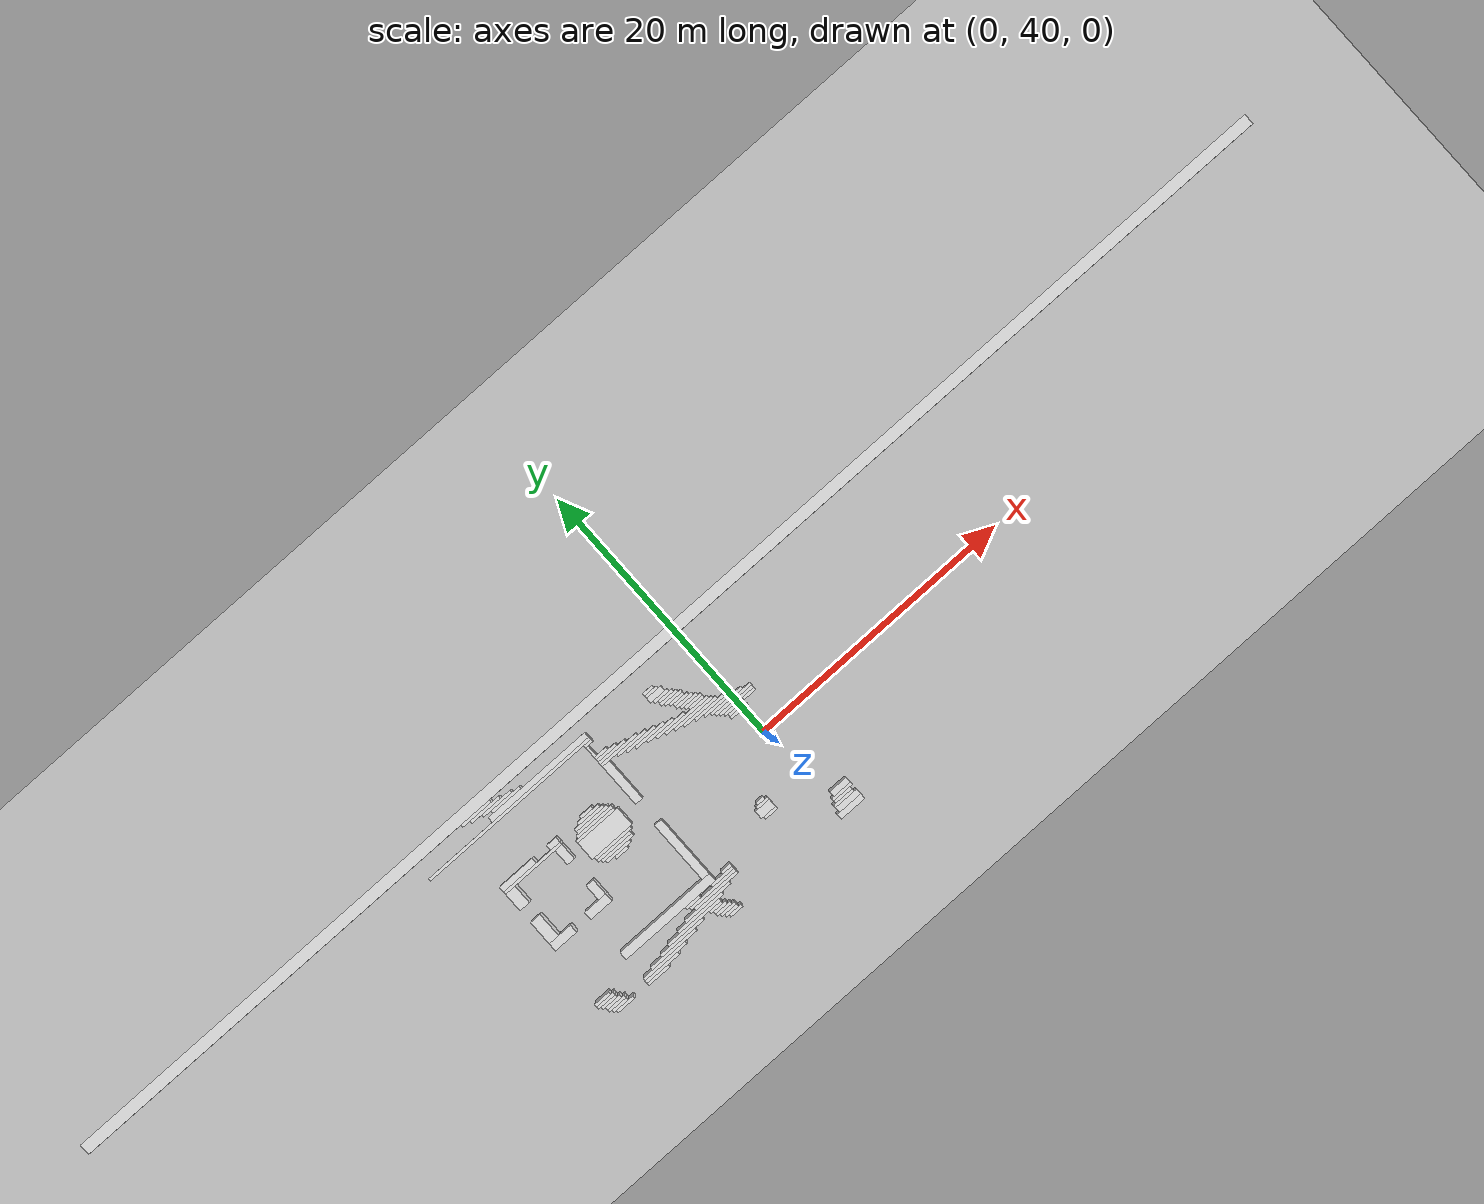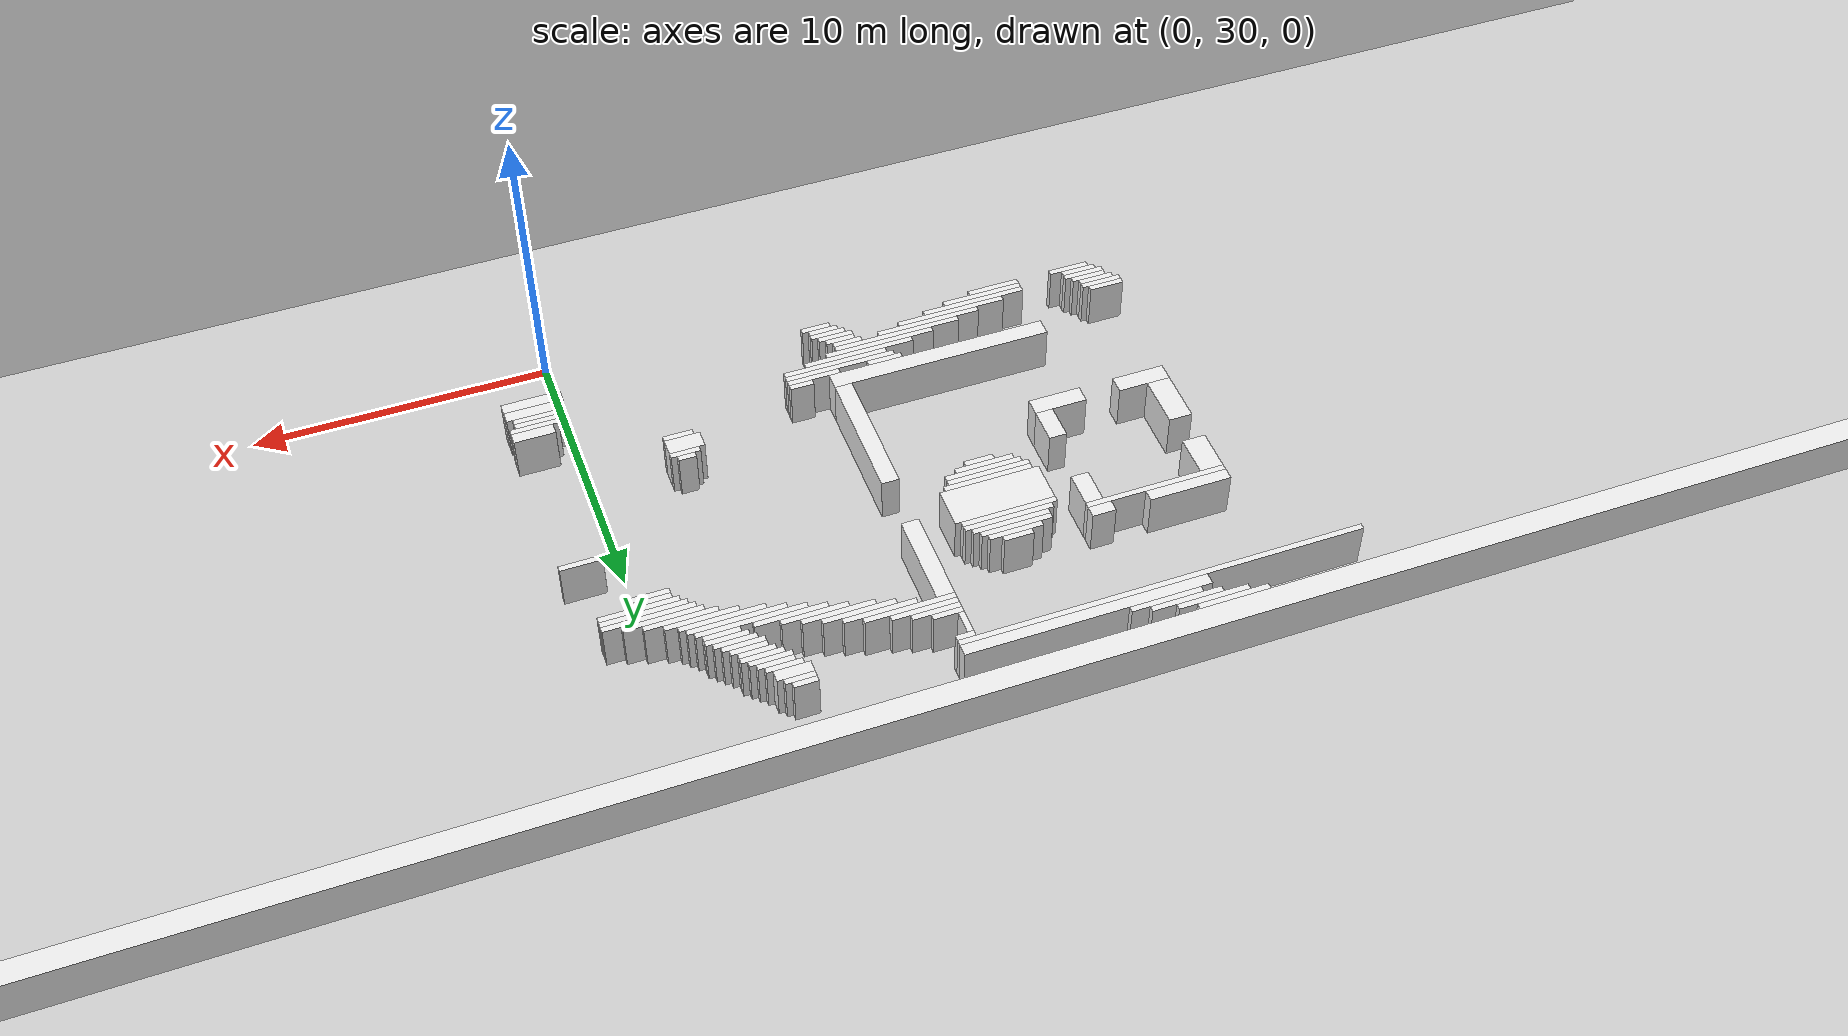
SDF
<sdf version="1.7">
 <world name="default">
  <model name="ground_plane">
   <static>1</static>
   <link name="link">
    <collision name="collision">
     <geometry><plane><normal>0 0 1</normal><size>120 120</size></plane></geometry>
    </collision>
    <visual name="visual">
     <geometry><plane><normal>0 0 1</normal><size>120 120</size></plane></geometry>
     <material>
      <script><uri>file://media/materials/scripts/gazebo.material</uri><name>Gazebo/Grey</name></script>
     </material>
    </visual>
   </link>
  </model>
  <model name="random_complex_03_model">
   <static>1</static>
   <link name="obs_1">
    <pose>-0.4000 48.8000 0.8000 0 0 0</pose>
    <collision name="obs_1_col"><geometry><box><size>99.2000 0.8000 1.6000</size></box></geometry></collision>
    <visual name="obs_1_vis">
     <geometry><box><size>99.2000 0.8000 1.6000</size></box></geometry>
     <material>
      <script><uri>file://media/materials/scripts/gazebo.material</uri><name>Gazebo/White</name></script>
     </material>
    </visual>
   </link>
   <link name="obs_3">
    <pose>-17.2000 48.3000 0.8000 0 0 0</pose>
    <collision name="obs_3_col"><geometry><box><size>2.4000 0.2000 1.6000</size></box></geometry></collision>
    <visual name="obs_3_vis">
     <geometry><box><size>2.4000 0.2000 1.6000</size></box></geometry>
     <material>
      <script><uri>file://media/materials/scripts/gazebo.material</uri><name>Gazebo/White</name></script>
     </material>
    </visual>
   </link>
   <link name="obs_6">
    <pose>-16.6000 48.1000 0.8000 0 0 0</pose>
    <collision name="obs_6_col"><geometry><box><size>2.4000 0.2000 1.6000</size></box></geometry></collision>
    <visual name="obs_6_vis">
     <geometry><box><size>2.4000 0.2000 1.6000</size></box></geometry>
     <material>
      <script><uri>file://media/materials/scripts/gazebo.material</uri><name>Gazebo/White</name></script>
     </material>
    </visual>
   </link>
   <link name="obs_10">
    <pose>-15.8000 47.9000 0.8000 0 0 0</pose>
    <collision name="obs_10_col"><geometry><box><size>2.4000 0.2000 1.6000</size></box></geometry></collision>
    <visual name="obs_10_vis">
     <geometry><box><size>2.4000 0.2000 1.6000</size></box></geometry>
     <material>
      <script><uri>file://media/materials/scripts/gazebo.material</uri><name>Gazebo/White</name></script>
     </material>
    </visual>
   </link>
   <link name="obs_15">
    <pose>-15.2000 47.7000 0.8000 0 0 0</pose>
    <collision name="obs_15_col"><geometry><box><size>2.4000 0.2000 1.6000</size></box></geometry></collision>
    <visual name="obs_15_vis">
     <geometry><box><size>2.4000 0.2000 1.6000</size></box></geometry>
     <material>
      <script><uri>file://media/materials/scripts/gazebo.material</uri><name>Gazebo/White</name></script>
     </material>
    </visual>
   </link>
   <link name="obs_22">
    <pose>-12.7000 47.4000 0.8000 0 0 0</pose>
    <collision name="obs_22_col"><geometry><box><size>8.2000 0.4000 1.6000</size></box></geometry></collision>
    <visual name="obs_22_vis">
     <geometry><box><size>8.2000 0.4000 1.6000</size></box></geometry>
     <material>
      <script><uri>file://media/materials/scripts/gazebo.material</uri><name>Gazebo/White</name></script>
     </material>
    </visual>
   </link>
   <link name="obs_26">
    <pose>-15.4000 47.1000 0.8000 0 0 0</pose>
    <collision name="obs_26_col"><geometry><box><size>13.6000 0.2000 1.6000</size></box></geometry></collision>
    <visual name="obs_26_vis">
     <geometry><box><size>13.6000 0.2000 1.6000</size></box></geometry>
     <material>
      <script><uri>file://media/materials/scripts/gazebo.material</uri><name>Gazebo/White</name></script>
     </material>
    </visual>
   </link>
   <link name="obs_30">
    <pose>-8.9000 46.9000 0.8000 0 0 0</pose>
    <collision name="obs_30_col"><geometry><box><size>0.6000 0.2000 1.6000</size></box></geometry></collision>
    <visual name="obs_30_vis">
     <geometry><box><size>0.6000 0.2000 1.6000</size></box></geometry>
     <material>
      <script><uri>file://media/materials/scripts/gazebo.material</uri><name>Gazebo/White</name></script>
     </material>
    </visual>
   </link>
   <link name="obs_31">
    <pose>-3.8000 46.9000 0.8000 0 0 0</pose>
    <collision name="obs_31_col"><geometry><box><size>0.8000 0.2000 1.6000</size></box></geometry></collision>
    <visual name="obs_31_vis">
     <geometry><box><size>0.8000 0.2000 1.6000</size></box></geometry>
     <material>
      <script><uri>file://media/materials/scripts/gazebo.material</uri><name>Gazebo/White</name></script>
     </material>
    </visual>
   </link>
   <link name="obs_34">
    <pose>-3.7000 46.7000 0.8000 0 0 0</pose>
    <collision name="obs_34_col"><geometry><box><size>1.0000 0.2000 1.6000</size></box></geometry></collision>
    <visual name="obs_34_vis">
     <geometry><box><size>1.0000 0.2000 1.6000</size></box></geometry>
     <material>
      <script><uri>file://media/materials/scripts/gazebo.material</uri><name>Gazebo/White</name></script>
     </material>
    </visual>
   </link>
   <link name="obs_38">
    <pose>-3.6000 46.4000 0.8000 0 0 0</pose>
    <collision name="obs_38_col"><geometry><box><size>1.2000 0.4000 1.6000</size></box></geometry></collision>
    <visual name="obs_38_vis">
     <geometry><box><size>1.2000 0.4000 1.6000</size></box></geometry>
     <material>
      <script><uri>file://media/materials/scripts/gazebo.material</uri><name>Gazebo/White</name></script>
     </material>
    </visual>
   </link>
   <link name="obs_42">
    <pose>-9.1000 46.4000 0.8000 0 0 0</pose>
    <collision name="obs_42_col"><geometry><box><size>0.2000 0.8000 1.6000</size></box></geometry></collision>
    <visual name="obs_42_vis">
     <geometry><box><size>0.2000 0.8000 1.6000</size></box></geometry>
     <material>
      <script><uri>file://media/materials/scripts/gazebo.material</uri><name>Gazebo/White</name></script>
     </material>
    </visual>
   </link>
   <link name="obs_45">
    <pose>-3.4000 46.1000 0.8000 0 0 0</pose>
    <collision name="obs_45_col"><geometry><box><size>1.2000 0.2000 1.6000</size></box></geometry></collision>
    <visual name="obs_45_vis">
     <geometry><box><size>1.2000 0.2000 1.6000</size></box></geometry>
     <material>
      <script><uri>file://media/materials/scripts/gazebo.material</uri><name>Gazebo/White</name></script>
     </material>
    </visual>
   </link>
   <link name="obs_50">
    <pose>-8.7000 45.9000 0.8000 0 0 0</pose>
    <collision name="obs_50_col"><geometry><box><size>1.0000 0.2000 1.6000</size></box></geometry></collision>
    <visual name="obs_50_vis">
     <geometry><box><size>1.0000 0.2000 1.6000</size></box></geometry>
     <material>
      <script><uri>file://media/materials/scripts/gazebo.material</uri><name>Gazebo/White</name></script>
     </material>
    </visual>
   </link>
   <link name="obs_51">
    <pose>-3.2000 45.9000 0.8000 0 0 0</pose>
    <collision name="obs_51_col"><geometry><box><size>1.2000 0.2000 1.6000</size></box></geometry></collision>
    <visual name="obs_51_vis">
     <geometry><box><size>1.2000 0.2000 1.6000</size></box></geometry>
     <material>
      <script><uri>file://media/materials/scripts/gazebo.material</uri><name>Gazebo/White</name></script>
     </material>
    </visual>
   </link>
   <link name="obs_54">
    <pose>-8.4000 45.7000 0.8000 0 0 0</pose>
    <collision name="obs_54_col"><geometry><box><size>1.6000 0.2000 1.6000</size></box></geometry></collision>
    <visual name="obs_54_vis">
     <geometry><box><size>1.6000 0.2000 1.6000</size></box></geometry>
     <material>
      <script><uri>file://media/materials/scripts/gazebo.material</uri><name>Gazebo/White</name></script>
     </material>
    </visual>
   </link>
   <link name="obs_55">
    <pose>-3.1000 45.7000 0.8000 0 0 0</pose>
    <collision name="obs_55_col"><geometry><box><size>1.4000 0.2000 1.6000</size></box></geometry></collision>
    <visual name="obs_55_vis">
     <geometry><box><size>1.4000 0.2000 1.6000</size></box></geometry>
     <material>
      <script><uri>file://media/materials/scripts/gazebo.material</uri><name>Gazebo/White</name></script>
     </material>
    </visual>
   </link>
   <link name="obs_58">
    <pose>-8.1000 45.5000 0.8000 0 0 0</pose>
    <collision name="obs_58_col"><geometry><box><size>2.2000 0.2000 1.6000</size></box></geometry></collision>
    <visual name="obs_58_vis">
     <geometry><box><size>2.2000 0.2000 1.6000</size></box></geometry>
     <material>
      <script><uri>file://media/materials/scripts/gazebo.material</uri><name>Gazebo/White</name></script>
     </material>
    </visual>
   </link>
   <link name="obs_59">
    <pose>-2.9000 45.5000 0.8000 0 0 0</pose>
    <collision name="obs_59_col"><geometry><box><size>1.4000 0.2000 1.6000</size></box></geometry></collision>
    <visual name="obs_59_vis">
     <geometry><box><size>1.4000 0.2000 1.6000</size></box></geometry>
     <material>
      <script><uri>file://media/materials/scripts/gazebo.material</uri><name>Gazebo/White</name></script>
     </material>
    </visual>
   </link>
   <link name="obs_62">
    <pose>-7.7000 45.3000 0.8000 0 0 0</pose>
    <collision name="obs_62_col"><geometry><box><size>3.0000 0.2000 1.6000</size></box></geometry></collision>
    <visual name="obs_62_vis">
     <geometry><box><size>3.0000 0.2000 1.6000</size></box></geometry>
     <material>
      <script><uri>file://media/materials/scripts/gazebo.material</uri><name>Gazebo/White</name></script>
     </material>
    </visual>
   </link>
   <link name="obs_63">
    <pose>-2.8000 45.3000 0.8000 0 0 0</pose>
    <collision name="obs_63_col"><geometry><box><size>1.2000 0.2000 1.6000</size></box></geometry></collision>
    <visual name="obs_63_vis">
     <geometry><box><size>1.2000 0.2000 1.6000</size></box></geometry>
     <material>
      <script><uri>file://media/materials/scripts/gazebo.material</uri><name>Gazebo/White</name></script>
     </material>
    </visual>
   </link>
   <link name="obs_66">
    <pose>-6.8000 45.1000 0.8000 0 0 0</pose>
    <collision name="obs_66_col"><geometry><box><size>2.4000 0.2000 1.6000</size></box></geometry></collision>
    <visual name="obs_66_vis">
     <geometry><box><size>2.4000 0.2000 1.6000</size></box></geometry>
     <material>
      <script><uri>file://media/materials/scripts/gazebo.material</uri><name>Gazebo/White</name></script>
     </material>
    </visual>
   </link>
   <link name="obs_67">
    <pose>-2.6000 45.1000 0.8000 0 0 0</pose>
    <collision name="obs_67_col"><geometry><box><size>1.2000 0.2000 1.6000</size></box></geometry></collision>
    <visual name="obs_67_vis">
     <geometry><box><size>1.2000 0.2000 1.6000</size></box></geometry>
     <material>
      <script><uri>file://media/materials/scripts/gazebo.material</uri><name>Gazebo/White</name></script>
     </material>
    </visual>
   </link>
   <link name="obs_70">
    <pose>-6.2000 44.9000 0.8000 0 0 0</pose>
    <collision name="obs_70_col"><geometry><box><size>2.4000 0.2000 1.6000</size></box></geometry></collision>
    <visual name="obs_70_vis">
     <geometry><box><size>2.4000 0.2000 1.6000</size></box></geometry>
     <material>
      <script><uri>file://media/materials/scripts/gazebo.material</uri><name>Gazebo/White</name></script>
     </material>
    </visual>
   </link>
   <link name="obs_71">
    <pose>-2.5000 44.9000 0.8000 0 0 0</pose>
    <collision name="obs_71_col"><geometry><box><size>1.4000 0.2000 1.6000</size></box></geometry></collision>
    <visual name="obs_71_vis">
     <geometry><box><size>1.4000 0.2000 1.6000</size></box></geometry>
     <material>
      <script><uri>file://media/materials/scripts/gazebo.material</uri><name>Gazebo/White</name></script>
     </material>
    </visual>
   </link>
   <link name="obs_73">
    <pose>-5.6000 44.7000 0.8000 0 0 0</pose>
    <collision name="obs_73_col"><geometry><box><size>2.4000 0.2000 1.6000</size></box></geometry></collision>
    <visual name="obs_73_vis">
     <geometry><box><size>2.4000 0.2000 1.6000</size></box></geometry>
     <material>
      <script><uri>file://media/materials/scripts/gazebo.material</uri><name>Gazebo/White</name></script>
     </material>
    </visual>
   </link>
   <link name="obs_74">
    <pose>-2.3000 44.7000 0.8000 0 0 0</pose>
    <collision name="obs_74_col"><geometry><box><size>1.4000 0.2000 1.6000</size></box></geometry></collision>
    <visual name="obs_74_vis">
     <geometry><box><size>1.4000 0.2000 1.6000</size></box></geometry>
     <material>
      <script><uri>file://media/materials/scripts/gazebo.material</uri><name>Gazebo/White</name></script>
     </material>
    </visual>
   </link>
   <link name="obs_77">
    <pose>-4.9000 44.5000 0.8000 0 0 0</pose>
    <collision name="obs_77_col"><geometry><box><size>2.2000 0.2000 1.6000</size></box></geometry></collision>
    <visual name="obs_77_vis">
     <geometry><box><size>2.2000 0.2000 1.6000</size></box></geometry>
     <material>
      <script><uri>file://media/materials/scripts/gazebo.material</uri><name>Gazebo/White</name></script>
     </material>
    </visual>
   </link>
   <link name="obs_78">
    <pose>-2.1000 44.5000 0.8000 0 0 0</pose>
    <collision name="obs_78_col"><geometry><box><size>1.4000 0.2000 1.6000</size></box></geometry></collision>
    <visual name="obs_78_vis">
     <geometry><box><size>1.4000 0.2000 1.6000</size></box></geometry>
     <material>
      <script><uri>file://media/materials/scripts/gazebo.material</uri><name>Gazebo/White</name></script>
     </material>
    </visual>
   </link>
   <link name="obs_84">
    <pose>-4.2000 44.3000 0.8000 0 0 0</pose>
    <collision name="obs_84_col"><geometry><box><size>2.4000 0.2000 1.6000</size></box></geometry></collision>
    <visual name="obs_84_vis">
     <geometry><box><size>2.4000 0.2000 1.6000</size></box></geometry>
     <material>
      <script><uri>file://media/materials/scripts/gazebo.material</uri><name>Gazebo/White</name></script>
     </material>
    </visual>
   </link>
   <link name="obs_85">
    <pose>-2.0000 44.3000 0.8000 0 0 0</pose>
    <collision name="obs_85_col"><geometry><box><size>1.2000 0.2000 1.6000</size></box></geometry></collision>
    <visual name="obs_85_vis">
     <geometry><box><size>1.2000 0.2000 1.6000</size></box></geometry>
     <material>
      <script><uri>file://media/materials/scripts/gazebo.material</uri><name>Gazebo/White</name></script>
     </material>
    </visual>
   </link>
   <link name="obs_88">
    <pose>-3.0000 44.1000 0.8000 0 0 0</pose>
    <collision name="obs_88_col"><geometry><box><size>3.6000 0.2000 1.6000</size></box></geometry></collision>
    <visual name="obs_88_vis">
     <geometry><box><size>3.6000 0.2000 1.6000</size></box></geometry>
     <material>
      <script><uri>file://media/materials/scripts/gazebo.material</uri><name>Gazebo/White</name></script>
     </material>
    </visual>
   </link>
   <link name="obs_92">
    <pose>-2.6000 43.9000 0.8000 0 0 0</pose>
    <collision name="obs_92_col"><geometry><box><size>3.2000 0.2000 1.6000</size></box></geometry></collision>
    <visual name="obs_92_vis">
     <geometry><box><size>3.2000 0.2000 1.6000</size></box></geometry>
     <material>
      <script><uri>file://media/materials/scripts/gazebo.material</uri><name>Gazebo/White</name></script>
     </material>
    </visual>
   </link>
   <link name="obs_96">
    <pose>-11.9000 43.7000 0.8000 0 0 0</pose>
    <collision name="obs_96_col"><geometry><box><size>1.0000 0.2000 1.6000</size></box></geometry></collision>
    <visual name="obs_96_vis">
     <geometry><box><size>1.0000 0.2000 1.6000</size></box></geometry>
     <material>
      <script><uri>file://media/materials/scripts/gazebo.material</uri><name>Gazebo/White</name></script>
     </material>
    </visual>
   </link>
   <link name="obs_97">
    <pose>-2.2000 43.7000 0.8000 0 0 0</pose>
    <collision name="obs_97_col"><geometry><box><size>2.8000 0.2000 1.6000</size></box></geometry></collision>
    <visual name="obs_97_vis">
     <geometry><box><size>2.8000 0.2000 1.6000</size></box></geometry>
     <material>
      <script><uri>file://media/materials/scripts/gazebo.material</uri><name>Gazebo/White</name></script>
     </material>
    </visual>
   </link>
   <link name="obs_100">
    <pose>-17.8000 43.6000 0.8000 0 0 0</pose>
    <collision name="obs_100_col"><geometry><box><size>2.8000 0.4000 1.6000</size></box></geometry></collision>
    <visual name="obs_100_vis">
     <geometry><box><size>2.8000 0.4000 1.6000</size></box></geometry>
     <material>
      <script><uri>file://media/materials/scripts/gazebo.material</uri><name>Gazebo/White</name></script>
     </material>
    </visual>
   </link>
   <link name="obs_101">
    <pose>-14.8000 43.6000 0.8000 0 0 0</pose>
    <collision name="obs_101_col"><geometry><box><size>0.8000 0.4000 1.6000</size></box></geometry></collision>
    <visual name="obs_101_vis">
     <geometry><box><size>0.8000 0.4000 1.6000</size></box></geometry>
     <material>
      <script><uri>file://media/materials/scripts/gazebo.material</uri><name>Gazebo/White</name></script>
     </material>
    </visual>
   </link>
   <link name="obs_103">
    <pose>-11.9000 43.5000 0.8000 0 0 0</pose>
    <collision name="obs_103_col"><geometry><box><size>1.8000 0.2000 1.6000</size></box></geometry></collision>
    <visual name="obs_103_vis">
     <geometry><box><size>1.8000 0.2000 1.6000</size></box></geometry>
     <material>
      <script><uri>file://media/materials/scripts/gazebo.material</uri><name>Gazebo/White</name></script>
     </material>
    </visual>
   </link>
   <link name="obs_104">
    <pose>-1.6000 43.5000 0.8000 0 0 0</pose>
    <collision name="obs_104_col"><geometry><box><size>2.4000 0.2000 1.6000</size></box></geometry></collision>
    <visual name="obs_104_vis">
     <geometry><box><size>2.4000 0.2000 1.6000</size></box></geometry>
     <material>
      <script><uri>file://media/materials/scripts/gazebo.material</uri><name>Gazebo/White</name></script>
     </material>
    </visual>
   </link>
   <link name="obs_109">
    <pose>-16.8000 43.3000 0.8000 0 0 0</pose>
    <collision name="obs_109_col"><geometry><box><size>4.8000 0.2000 1.6000</size></box></geometry></collision>
    <visual name="obs_109_vis">
     <geometry><box><size>4.8000 0.2000 1.6000</size></box></geometry>
     <material>
      <script><uri>file://media/materials/scripts/gazebo.material</uri><name>Gazebo/White</name></script>
     </material>
    </visual>
   </link>
   <link name="obs_110">
    <pose>-12.0000 43.3000 0.8000 0 0 0</pose>
    <collision name="obs_110_col"><geometry><box><size>2.4000 0.2000 1.6000</size></box></geometry></collision>
    <visual name="obs_110_vis">
     <geometry><box><size>2.4000 0.2000 1.6000</size></box></geometry>
     <material>
      <script><uri>file://media/materials/scripts/gazebo.material</uri><name>Gazebo/White</name></script>
     </material>
    </visual>
   </link>
   <link name="obs_111">
    <pose>-1.0000 43.3000 0.8000 0 0 0</pose>
    <collision name="obs_111_col"><geometry><box><size>2.4000 0.2000 1.6000</size></box></geometry></collision>
    <visual name="obs_111_vis">
     <geometry><box><size>2.4000 0.2000 1.6000</size></box></geometry>
     <material>
      <script><uri>file://media/materials/scripts/gazebo.material</uri><name>Gazebo/White</name></script>
     </material>
    </visual>
   </link>
   <link name="obs_116">
    <pose>-11.9000 43.1000 0.8000 0 0 0</pose>
    <collision name="obs_116_col"><geometry><box><size>2.6000 0.2000 1.6000</size></box></geometry></collision>
    <visual name="obs_116_vis">
     <geometry><box><size>2.6000 0.2000 1.6000</size></box></geometry>
     <material>
      <script><uri>file://media/materials/scripts/gazebo.material</uri><name>Gazebo/White</name></script>
     </material>
    </visual>
   </link>
   <link name="obs_117">
    <pose>-0.5000 43.1000 0.8000 0 0 0</pose>
    <collision name="obs_117_col"><geometry><box><size>2.6000 0.2000 1.6000</size></box></geometry></collision>
    <visual name="obs_117_vis">
     <geometry><box><size>2.6000 0.2000 1.6000</size></box></geometry>
     <material>
      <script><uri>file://media/materials/scripts/gazebo.material</uri><name>Gazebo/White</name></script>
     </material>
    </visual>
   </link>
   <link name="obs_120">
    <pose>-11.9000 42.9000 0.8000 0 0 0</pose>
    <collision name="obs_120_col"><geometry><box><size>3.0000 0.2000 1.6000</size></box></geometry></collision>
    <visual name="obs_120_vis">
     <geometry><box><size>3.0000 0.2000 1.6000</size></box></geometry>
     <material>
      <script><uri>file://media/materials/scripts/gazebo.material</uri><name>Gazebo/White</name></script>
     </material>
    </visual>
   </link>
   <link name="obs_121">
    <pose>-0.1000 42.9000 0.8000 0 0 0</pose>
    <collision name="obs_121_col"><geometry><box><size>3.0000 0.2000 1.6000</size></box></geometry></collision>
    <visual name="obs_121_vis">
     <geometry><box><size>3.0000 0.2000 1.6000</size></box></geometry>
     <material>
      <script><uri>file://media/materials/scripts/gazebo.material</uri><name>Gazebo/White</name></script>
     </material>
    </visual>
   </link>
   <link name="obs_125">
    <pose>-12.0000 42.7000 0.8000 0 0 0</pose>
    <collision name="obs_125_col"><geometry><box><size>3.2000 0.2000 1.6000</size></box></geometry></collision>
    <visual name="obs_125_vis">
     <geometry><box><size>3.2000 0.2000 1.6000</size></box></geometry>
     <material>
      <script><uri>file://media/materials/scripts/gazebo.material</uri><name>Gazebo/White</name></script>
     </material>
    </visual>
   </link>
   <link name="obs_126">
    <pose>0.0000 42.7000 0.8000 0 0 0</pose>
    <collision name="obs_126_col"><geometry><box><size>2.8000 0.2000 1.6000</size></box></geometry></collision>
    <visual name="obs_126_vis">
     <geometry><box><size>2.8000 0.2000 1.6000</size></box></geometry>
     <material>
      <script><uri>file://media/materials/scripts/gazebo.material</uri><name>Gazebo/White</name></script>
     </material>
    </visual>
   </link>
   <link name="obs_129">
    <pose>-0.6000 42.5000 0.8000 0 0 0</pose>
    <collision name="obs_129_col"><geometry><box><size>1.2000 0.2000 1.6000</size></box></geometry></collision>
    <visual name="obs_129_vis">
     <geometry><box><size>1.2000 0.2000 1.6000</size></box></geometry>
     <material>
      <script><uri>file://media/materials/scripts/gazebo.material</uri><name>Gazebo/White</name></script>
     </material>
    </visual>
   </link>
   <link name="obs_130">
    <pose>0.9000 42.5000 0.8000 0 0 0</pose>
    <collision name="obs_130_col"><geometry><box><size>1.0000 0.2000 1.6000</size></box></geometry></collision>
    <visual name="obs_130_vis">
     <geometry><box><size>1.0000 0.2000 1.6000</size></box></geometry>
     <material>
      <script><uri>file://media/materials/scripts/gazebo.material</uri><name>Gazebo/White</name></script>
     </material>
    </visual>
   </link>
   <link name="obs_135">
    <pose>-0.4000 42.3000 0.8000 0 0 0</pose>
    <collision name="obs_135_col"><geometry><box><size>1.2000 0.2000 1.6000</size></box></geometry></collision>
    <visual name="obs_135_vis">
     <geometry><box><size>1.2000 0.2000 1.6000</size></box></geometry>
     <material>
      <script><uri>file://media/materials/scripts/gazebo.material</uri><name>Gazebo/White</name></script>
     </material>
    </visual>
   </link>
   <link name="obs_138">
    <pose>-8.9000 43.6000 0.8000 0 0 0</pose>
    <collision name="obs_138_col"><geometry><box><size>0.6000 3.2000 1.6000</size></box></geometry></collision>
    <visual name="obs_138_vis">
     <geometry><box><size>0.6000 3.2000 1.6000</size></box></geometry>
     <material>
      <script><uri>file://media/materials/scripts/gazebo.material</uri><name>Gazebo/White</name></script>
     </material>
    </visual>
   </link>
   <link name="obs_140">
    <pose>-14.7000 42.6000 0.8000 0 0 0</pose>
    <collision name="obs_140_col"><geometry><box><size>0.6000 1.2000 1.6000</size></box></geometry></collision>
    <visual name="obs_140_vis">
     <geometry><box><size>0.6000 1.2000 1.6000</size></box></geometry>
     <material>
      <script><uri>file://media/materials/scripts/gazebo.material</uri><name>Gazebo/White</name></script>
     </material>
    </visual>
   </link>
   <link name="obs_143">
    <pose>-0.3000 42.1000 0.8000 0 0 0</pose>
    <collision name="obs_143_col"><geometry><box><size>1.4000 0.2000 1.6000</size></box></geometry></collision>
    <visual name="obs_143_vis">
     <geometry><box><size>1.4000 0.2000 1.6000</size></box></geometry>
     <material>
      <script><uri>file://media/materials/scripts/gazebo.material</uri><name>Gazebo/White</name></script>
     </material>
    </visual>
   </link>
   <link name="obs_148">
    <pose>-18.8000 42.5000 0.8000 0 0 0</pose>
    <collision name="obs_148_col"><geometry><box><size>0.8000 1.4000 1.6000</size></box></geometry></collision>
    <visual name="obs_148_vis">
     <geometry><box><size>0.8000 1.4000 1.6000</size></box></geometry>
     <material>
      <script><uri>file://media/materials/scripts/gazebo.material</uri><name>Gazebo/White</name></script>
     </material>
    </visual>
   </link>
   <link name="obs_157">
    <pose>-11.9000 41.9000 0.8000 0 0 0</pose>
    <collision name="obs_157_col"><geometry><box><size>3.4000 1.4000 1.6000</size></box></geometry></collision>
    <visual name="obs_157_vis">
     <geometry><box><size>3.4000 1.4000 1.6000</size></box></geometry>
     <material>
      <script><uri>file://media/materials/scripts/gazebo.material</uri><name>Gazebo/White</name></script>
     </material>
    </visual>
   </link>
   <link name="obs_162">
    <pose>-11.9000 41.1000 0.8000 0 0 0</pose>
    <collision name="obs_162_col"><geometry><box><size>3.0000 0.2000 1.6000</size></box></geometry></collision>
    <visual name="obs_162_vis">
     <geometry><box><size>3.0000 0.2000 1.6000</size></box></geometry>
     <material>
      <script><uri>file://media/materials/scripts/gazebo.material</uri><name>Gazebo/White</name></script>
     </material>
    </visual>
   </link>
   <link name="obs_168">
    <pose>-12.0000 40.9000 0.8000 0 0 0</pose>
    <collision name="obs_168_col"><geometry><box><size>2.8000 0.2000 1.6000</size></box></geometry></collision>
    <visual name="obs_168_vis">
     <geometry><box><size>2.8000 0.2000 1.6000</size></box></geometry>
     <material>
      <script><uri>file://media/materials/scripts/gazebo.material</uri><name>Gazebo/White</name></script>
     </material>
    </visual>
   </link>
   <link name="obs_171">
    <pose>-11.9000 40.7000 0.8000 0 0 0</pose>
    <collision name="obs_171_col"><geometry><box><size>2.6000 0.2000 1.6000</size></box></geometry></collision>
    <visual name="obs_171_vis">
     <geometry><box><size>2.6000 0.2000 1.6000</size></box></geometry>
     <material>
      <script><uri>file://media/materials/scripts/gazebo.material</uri><name>Gazebo/White</name></script>
     </material>
    </visual>
   </link>
   <link name="obs_175">
    <pose>-12.0000 40.5000 0.8000 0 0 0</pose>
    <collision name="obs_175_col"><geometry><box><size>2.0000 0.2000 1.6000</size></box></geometry></collision>
    <visual name="obs_175_vis">
     <geometry><box><size>2.0000 0.2000 1.6000</size></box></geometry>
     <material>
      <script><uri>file://media/materials/scripts/gazebo.material</uri><name>Gazebo/White</name></script>
     </material>
    </visual>
   </link>
   <link name="obs_181">
    <pose>-11.9000 40.3000 0.8000 0 0 0</pose>
    <collision name="obs_181_col"><geometry><box><size>1.0000 0.2000 1.6000</size></box></geometry></collision>
    <visual name="obs_181_vis">
     <geometry><box><size>1.0000 0.2000 1.6000</size></box></geometry>
     <material>
      <script><uri>file://media/materials/scripts/gazebo.material</uri><name>Gazebo/White</name></script>
     </material>
    </visual>
   </link>
   <link name="obs_187">
    <pose>1.3000 40.1000 0.8000 0 0 0</pose>
    <collision name="obs_187_col"><geometry><box><size>1.4000 0.2000 1.6000</size></box></geometry></collision>
    <visual name="obs_187_vis">
     <geometry><box><size>1.4000 0.2000 1.6000</size></box></geometry>
     <material>
      <script><uri>file://media/materials/scripts/gazebo.material</uri><name>Gazebo/White</name></script>
     </material>
    </visual>
   </link>
   <link name="obs_211">
    <pose>-18.8000 39.9000 0.8000 0 0 0</pose>
    <collision name="obs_211_col"><geometry><box><size>0.8000 1.8000 1.6000</size></box></geometry></collision>
    <visual name="obs_211_vis">
     <geometry><box><size>0.8000 1.8000 1.6000</size></box></geometry>
     <material>
      <script><uri>file://media/materials/scripts/gazebo.material</uri><name>Gazebo/White</name></script>
     </material>
    </visual>
   </link>
   <link name="obs_212">
    <pose>-14.7000 39.6000 0.8000 0 0 0</pose>
    <collision name="obs_212_col"><geometry><box><size>0.6000 1.2000 1.6000</size></box></geometry></collision>
    <visual name="obs_212_vis">
     <geometry><box><size>0.6000 1.2000 1.6000</size></box></geometry>
     <material>
      <script><uri>file://media/materials/scripts/gazebo.material</uri><name>Gazebo/White</name></script>
     </material>
    </visual>
   </link>
   <link name="obs_234">
    <pose>-18.3000 38.7000 0.8000 0 0 0</pose>
    <collision name="obs_234_col"><geometry><box><size>1.8000 0.6000 1.6000</size></box></geometry></collision>
    <visual name="obs_234_vis">
     <geometry><box><size>1.8000 0.6000 1.6000</size></box></geometry>
     <material>
      <script><uri>file://media/materials/scripts/gazebo.material</uri><name>Gazebo/White</name></script>
     </material>
    </visual>
   </link>
   <link name="obs_235">
    <pose>-15.3000 38.7000 0.8000 0 0 0</pose>
    <collision name="obs_235_col"><geometry><box><size>1.8000 0.6000 1.6000</size></box></geometry></collision>
    <visual name="obs_235_vis">
     <geometry><box><size>1.8000 0.6000 1.6000</size></box></geometry>
     <material>
      <script><uri>file://media/materials/scripts/gazebo.material</uri><name>Gazebo/White</name></script>
     </material>
    </visual>
   </link>
   <link name="obs_264">
    <pose>-3.1000 36.9000 0.8000 0 0 0</pose>
    <collision name="obs_264_col"><geometry><box><size>0.6000 0.2000 1.6000</size></box></geometry></collision>
    <visual name="obs_264_vis">
     <geometry><box><size>0.6000 0.2000 1.6000</size></box></geometry>
     <material>
      <script><uri>file://media/materials/scripts/gazebo.material</uri><name>Gazebo/White</name></script>
     </material>
    </visual>
   </link>
   <link name="obs_268">
    <pose>-3.1000 36.7000 0.8000 0 0 0</pose>
    <collision name="obs_268_col"><geometry><box><size>1.0000 0.2000 1.6000</size></box></geometry></collision>
    <visual name="obs_268_vis">
     <geometry><box><size>1.0000 0.2000 1.6000</size></box></geometry>
     <material>
      <script><uri>file://media/materials/scripts/gazebo.material</uri><name>Gazebo/White</name></script>
     </material>
    </visual>
   </link>
   <link name="obs_286">
    <pose>-3.2000 36.3000 0.8000 0 0 0</pose>
    <collision name="obs_286_col"><geometry><box><size>1.2000 0.6000 1.6000</size></box></geometry></collision>
    <visual name="obs_286_vis">
     <geometry><box><size>1.2000 0.6000 1.6000</size></box></geometry>
     <material>
      <script><uri>file://media/materials/scripts/gazebo.material</uri><name>Gazebo/White</name></script>
     </material>
    </visual>
   </link>
   <link name="obs_296">
    <pose>-3.1000 35.9000 0.8000 0 0 0</pose>
    <collision name="obs_296_col"><geometry><box><size>1.0000 0.2000 1.6000</size></box></geometry></collision>
    <visual name="obs_296_vis">
     <geometry><box><size>1.0000 0.2000 1.6000</size></box></geometry>
     <material>
      <script><uri>file://media/materials/scripts/gazebo.material</uri><name>Gazebo/White</name></script>
     </material>
    </visual>
   </link>
   <link name="obs_302">
    <pose>-8.9000 37.9000 0.8000 0 0 0</pose>
    <collision name="obs_302_col"><geometry><box><size>0.6000 4.6000 1.6000</size></box></geometry></collision>
    <visual name="obs_302_vis">
     <geometry><box><size>0.6000 4.6000 1.6000</size></box></geometry>
     <material>
      <script><uri>file://media/materials/scripts/gazebo.material</uri><name>Gazebo/White</name></script>
     </material>
    </visual>
   </link>
   <link name="obs_325">
    <pose>-12.4000 35.3000 0.8000 0 0 0</pose>
    <collision name="obs_325_col"><geometry><box><size>7.6000 0.6000 1.6000</size></box></geometry></collision>
    <visual name="obs_325_vis">
     <geometry><box><size>7.6000 0.6000 1.6000</size></box></geometry>
     <material>
      <script><uri>file://media/materials/scripts/gazebo.material</uri><name>Gazebo/White</name></script>
     </material>
    </visual>
   </link>
   <link name="obs_329">
    <pose>-7.6000 35.1000 0.8000 0 0 0</pose>
    <collision name="obs_329_col"><geometry><box><size>0.8000 0.2000 1.6000</size></box></geometry></collision>
    <visual name="obs_329_vis">
     <geometry><box><size>0.8000 0.2000 1.6000</size></box></geometry>
     <material>
      <script><uri>file://media/materials/scripts/gazebo.material</uri><name>Gazebo/White</name></script>
     </material>
    </visual>
   </link>
   <link name="obs_338">
    <pose>-10.6000 34.9000 0.8000 0 0 0</pose>
    <collision name="obs_338_col"><geometry><box><size>1.2000 0.2000 1.6000</size></box></geometry></collision>
    <visual name="obs_338_vis">
     <geometry><box><size>1.2000 0.2000 1.6000</size></box></geometry>
     <material>
      <script><uri>file://media/materials/scripts/gazebo.material</uri><name>Gazebo/White</name></script>
     </material>
    </visual>
   </link>
   <link name="obs_339">
    <pose>-8.1000 34.9000 0.8000 0 0 0</pose>
    <collision name="obs_339_col"><geometry><box><size>1.8000 0.2000 1.6000</size></box></geometry></collision>
    <visual name="obs_339_vis">
     <geometry><box><size>1.8000 0.2000 1.6000</size></box></geometry>
     <material>
      <script><uri>file://media/materials/scripts/gazebo.material</uri><name>Gazebo/White</name></script>
     </material>
    </visual>
   </link>
   <link name="obs_348">
    <pose>-9.1000 34.7000 0.8000 0 0 0</pose>
    <collision name="obs_348_col"><geometry><box><size>3.8000 0.2000 1.6000</size></box></geometry></collision>
    <visual name="obs_348_vis">
     <geometry><box><size>3.8000 0.2000 1.6000</size></box></geometry>
     <material>
      <script><uri>file://media/materials/scripts/gazebo.material</uri><name>Gazebo/White</name></script>
     </material>
    </visual>
   </link>
   <link name="obs_358">
    <pose>-9.0000 34.5000 0.8000 0 0 0</pose>
    <collision name="obs_358_col"><geometry><box><size>3.6000 0.2000 1.6000</size></box></geometry></collision>
    <visual name="obs_358_vis">
     <geometry><box><size>3.6000 0.2000 1.6000</size></box></geometry>
     <material>
      <script><uri>file://media/materials/scripts/gazebo.material</uri><name>Gazebo/White</name></script>
     </material>
    </visual>
   </link>
   <link name="obs_367">
    <pose>-9.9000 34.3000 0.8000 0 0 0</pose>
    <collision name="obs_367_col"><geometry><box><size>3.8000 0.2000 1.6000</size></box></geometry></collision>
    <visual name="obs_367_vis">
     <geometry><box><size>3.8000 0.2000 1.6000</size></box></geometry>
     <material>
      <script><uri>file://media/materials/scripts/gazebo.material</uri><name>Gazebo/White</name></script>
     </material>
    </visual>
   </link>
   <link name="obs_372">
    <pose>1.3000 34.2000 0.8000 0 0 0</pose>
    <collision name="obs_372_col"><geometry><box><size>1.4000 0.4000 1.6000</size></box></geometry></collision>
    <visual name="obs_372_vis">
     <geometry><box><size>1.4000 0.4000 1.6000</size></box></geometry>
     <material>
      <script><uri>file://media/materials/scripts/gazebo.material</uri><name>Gazebo/White</name></script>
     </material>
    </visual>
   </link>
   <link name="obs_375">
    <pose>-19.0000 34.1000 0.8000 0 0 0</pose>
    <collision name="obs_375_col"><geometry><box><size>1.2000 0.2000 1.6000</size></box></geometry></collision>
    <visual name="obs_375_vis">
     <geometry><box><size>1.2000 0.2000 1.6000</size></box></geometry>
     <material>
      <script><uri>file://media/materials/scripts/gazebo.material</uri><name>Gazebo/White</name></script>
     </material>
    </visual>
   </link>
   <link name="obs_376">
    <pose>-10.7000 34.1000 0.8000 0 0 0</pose>
    <collision name="obs_376_col"><geometry><box><size>3.8000 0.2000 1.6000</size></box></geometry></collision>
    <visual name="obs_376_vis">
     <geometry><box><size>3.8000 0.2000 1.6000</size></box></geometry>
     <material>
      <script><uri>file://media/materials/scripts/gazebo.material</uri><name>Gazebo/White</name></script>
     </material>
    </visual>
   </link>
   <link name="obs_381">
    <pose>-18.9000 33.9000 0.8000 0 0 0</pose>
    <collision name="obs_381_col"><geometry><box><size>1.4000 0.2000 1.6000</size></box></geometry></collision>
    <visual name="obs_381_vis">
     <geometry><box><size>1.4000 0.2000 1.6000</size></box></geometry>
     <material>
      <script><uri>file://media/materials/scripts/gazebo.material</uri><name>Gazebo/White</name></script>
     </material>
    </visual>
   </link>
   <link name="obs_382">
    <pose>-11.4000 33.9000 0.8000 0 0 0</pose>
    <collision name="obs_382_col"><geometry><box><size>4.4000 0.2000 1.6000</size></box></geometry></collision>
    <visual name="obs_382_vis">
     <geometry><box><size>4.4000 0.2000 1.6000</size></box></geometry>
     <material>
      <script><uri>file://media/materials/scripts/gazebo.material</uri><name>Gazebo/White</name></script>
     </material>
    </visual>
   </link>
   <link name="obs_383">
    <pose>1.2000 33.9000 0.8000 0 0 0</pose>
    <collision name="obs_383_col"><geometry><box><size>1.6000 0.2000 1.6000</size></box></geometry></collision>
    <visual name="obs_383_vis">
     <geometry><box><size>1.6000 0.2000 1.6000</size></box></geometry>
     <material>
      <script><uri>file://media/materials/scripts/gazebo.material</uri><name>Gazebo/White</name></script>
     </material>
    </visual>
   </link>
   <link name="obs_390">
    <pose>-18.8000 33.7000 0.8000 0 0 0</pose>
    <collision name="obs_390_col"><geometry><box><size>1.2000 0.2000 1.6000</size></box></geometry></collision>
    <visual name="obs_390_vis">
     <geometry><box><size>1.2000 0.2000 1.6000</size></box></geometry>
     <material>
      <script><uri>file://media/materials/scripts/gazebo.material</uri><name>Gazebo/White</name></script>
     </material>
    </visual>
   </link>
   <link name="obs_391">
    <pose>-12.6000 33.7000 0.8000 0 0 0</pose>
    <collision name="obs_391_col"><geometry><box><size>3.6000 0.2000 1.6000</size></box></geometry></collision>
    <visual name="obs_391_vis">
     <geometry><box><size>3.6000 0.2000 1.6000</size></box></geometry>
     <material>
      <script><uri>file://media/materials/scripts/gazebo.material</uri><name>Gazebo/White</name></script>
     </material>
    </visual>
   </link>
   <link name="obs_392">
    <pose>-9.7000 33.7000 0.8000 0 0 0</pose>
    <collision name="obs_392_col"><geometry><box><size>1.0000 0.2000 1.6000</size></box></geometry></collision>
    <visual name="obs_392_vis">
     <geometry><box><size>1.0000 0.2000 1.6000</size></box></geometry>
     <material>
      <script><uri>file://media/materials/scripts/gazebo.material</uri><name>Gazebo/White</name></script>
     </material>
    </visual>
   </link>
   <link name="obs_393">
    <pose>1.1000 33.7000 0.8000 0 0 0</pose>
    <collision name="obs_393_col"><geometry><box><size>1.4000 0.2000 1.6000</size></box></geometry></collision>
    <visual name="obs_393_vis">
     <geometry><box><size>1.4000 0.2000 1.6000</size></box></geometry>
     <material>
      <script><uri>file://media/materials/scripts/gazebo.material</uri><name>Gazebo/White</name></script>
     </material>
    </visual>
   </link>
   <link name="obs_398">
    <pose>-18.6000 33.5000 0.8000 0 0 0</pose>
    <collision name="obs_398_col"><geometry><box><size>1.2000 0.2000 1.6000</size></box></geometry></collision>
    <visual name="obs_398_vis">
     <geometry><box><size>1.2000 0.2000 1.6000</size></box></geometry>
     <material>
      <script><uri>file://media/materials/scripts/gazebo.material</uri><name>Gazebo/White</name></script>
     </material>
    </visual>
   </link>
   <link name="obs_399">
    <pose>-13.5000 33.5000 0.8000 0 0 0</pose>
    <collision name="obs_399_col"><geometry><box><size>3.8000 0.2000 1.6000</size></box></geometry></collision>
    <visual name="obs_399_vis">
     <geometry><box><size>3.8000 0.2000 1.6000</size></box></geometry>
     <material>
      <script><uri>file://media/materials/scripts/gazebo.material</uri><name>Gazebo/White</name></script>
     </material>
    </visual>
   </link>
   <link name="obs_400">
    <pose>-9.5000 33.5000 0.8000 0 0 0</pose>
    <collision name="obs_400_col"><geometry><box><size>1.0000 0.2000 1.6000</size></box></geometry></collision>
    <visual name="obs_400_vis">
     <geometry><box><size>1.0000 0.2000 1.6000</size></box></geometry>
     <material>
      <script><uri>file://media/materials/scripts/gazebo.material</uri><name>Gazebo/White</name></script>
     </material>
    </visual>
   </link>
   <link name="obs_401">
    <pose>1.0000 33.5000 0.8000 0 0 0</pose>
    <collision name="obs_401_col"><geometry><box><size>1.6000 0.2000 1.6000</size></box></geometry></collision>
    <visual name="obs_401_vis">
     <geometry><box><size>1.6000 0.2000 1.6000</size></box></geometry>
     <material>
      <script><uri>file://media/materials/scripts/gazebo.material</uri><name>Gazebo/White</name></script>
     </material>
    </visual>
   </link>
   <link name="obs_407">
    <pose>-18.5000 33.3000 0.8000 0 0 0</pose>
    <collision name="obs_407_col"><geometry><box><size>1.4000 0.2000 1.6000</size></box></geometry></collision>
    <visual name="obs_407_vis">
     <geometry><box><size>1.4000 0.2000 1.6000</size></box></geometry>
     <material>
      <script><uri>file://media/materials/scripts/gazebo.material</uri><name>Gazebo/White</name></script>
     </material>
    </visual>
   </link>
   <link name="obs_408">
    <pose>-14.4000 33.3000 0.8000 0 0 0</pose>
    <collision name="obs_408_col"><geometry><box><size>3.6000 0.2000 1.6000</size></box></geometry></collision>
    <visual name="obs_408_vis">
     <geometry><box><size>3.6000 0.2000 1.6000</size></box></geometry>
     <material>
      <script><uri>file://media/materials/scripts/gazebo.material</uri><name>Gazebo/White</name></script>
     </material>
    </visual>
   </link>
   <link name="obs_409">
    <pose>-9.4000 33.3000 0.8000 0 0 0</pose>
    <collision name="obs_409_col"><geometry><box><size>1.2000 0.2000 1.6000</size></box></geometry></collision>
    <visual name="obs_409_vis">
     <geometry><box><size>1.2000 0.2000 1.6000</size></box></geometry>
     <material>
      <script><uri>file://media/materials/scripts/gazebo.material</uri><name>Gazebo/White</name></script>
     </material>
    </visual>
   </link>
   <link name="obs_412">
    <pose>1.1000 33.2000 0.8000 0 0 0</pose>
    <collision name="obs_412_col"><geometry><box><size>1.8000 0.4000 1.6000</size></box></geometry></collision>
    <visual name="obs_412_vis">
     <geometry><box><size>1.8000 0.4000 1.6000</size></box></geometry>
     <material>
      <script><uri>file://media/materials/scripts/gazebo.material</uri><name>Gazebo/White</name></script>
     </material>
    </visual>
   </link>
   <link name="obs_415">
    <pose>-18.4000 33.1000 0.8000 0 0 0</pose>
    <collision name="obs_415_col"><geometry><box><size>1.2000 0.2000 1.6000</size></box></geometry></collision>
    <visual name="obs_415_vis">
     <geometry><box><size>1.2000 0.2000 1.6000</size></box></geometry>
     <material>
      <script><uri>file://media/materials/scripts/gazebo.material</uri><name>Gazebo/White</name></script>
     </material>
    </visual>
   </link>
   <link name="obs_416">
    <pose>-14.8000 33.1000 0.8000 0 0 0</pose>
    <collision name="obs_416_col"><geometry><box><size>2.8000 0.2000 1.6000</size></box></geometry></collision>
    <visual name="obs_416_vis">
     <geometry><box><size>2.8000 0.2000 1.6000</size></box></geometry>
     <material>
      <script><uri>file://media/materials/scripts/gazebo.material</uri><name>Gazebo/White</name></script>
     </material>
    </visual>
   </link>
   <link name="obs_417">
    <pose>-9.2000 33.1000 0.8000 0 0 0</pose>
    <collision name="obs_417_col"><geometry><box><size>1.2000 0.2000 1.6000</size></box></geometry></collision>
    <visual name="obs_417_vis">
     <geometry><box><size>1.2000 0.2000 1.6000</size></box></geometry>
     <material>
      <script><uri>file://media/materials/scripts/gazebo.material</uri><name>Gazebo/White</name></script>
     </material>
    </visual>
   </link>
   <link name="obs_422">
    <pose>-18.1000 32.9000 0.8000 0 0 0</pose>
    <collision name="obs_422_col"><geometry><box><size>1.4000 0.2000 1.6000</size></box></geometry></collision>
    <visual name="obs_422_vis">
     <geometry><box><size>1.4000 0.2000 1.6000</size></box></geometry>
     <material>
      <script><uri>file://media/materials/scripts/gazebo.material</uri><name>Gazebo/White</name></script>
     </material>
    </visual>
   </link>
   <link name="obs_423">
    <pose>-15.3000 32.9000 0.8000 0 0 0</pose>
    <collision name="obs_423_col"><geometry><box><size>1.8000 0.2000 1.6000</size></box></geometry></collision>
    <visual name="obs_423_vis">
     <geometry><box><size>1.8000 0.2000 1.6000</size></box></geometry>
     <material>
      <script><uri>file://media/materials/scripts/gazebo.material</uri><name>Gazebo/White</name></script>
     </material>
    </visual>
   </link>
   <link name="obs_424">
    <pose>-9.1000 32.9000 0.8000 0 0 0</pose>
    <collision name="obs_424_col"><geometry><box><size>1.0000 0.2000 1.6000</size></box></geometry></collision>
    <visual name="obs_424_vis">
     <geometry><box><size>1.0000 0.2000 1.6000</size></box></geometry>
     <material>
      <script><uri>file://media/materials/scripts/gazebo.material</uri><name>Gazebo/White</name></script>
     </material>
    </visual>
   </link>
   <link name="obs_428">
    <pose>1.0000 32.8000 0.8000 0 0 0</pose>
    <collision name="obs_428_col"><geometry><box><size>2.0000 0.4000 1.6000</size></box></geometry></collision>
    <visual name="obs_428_vis">
     <geometry><box><size>2.0000 0.4000 1.6000</size></box></geometry>
     <material>
      <script><uri>file://media/materials/scripts/gazebo.material</uri><name>Gazebo/White</name></script>
     </material>
    </visual>
   </link>
   <link name="obs_434">
    <pose>-8.9000 32.7000 0.8000 0 0 0</pose>
    <collision name="obs_434_col"><geometry><box><size>1.0000 0.2000 1.6000</size></box></geometry></collision>
    <visual name="obs_434_vis">
     <geometry><box><size>1.0000 0.2000 1.6000</size></box></geometry>
     <material>
      <script><uri>file://media/materials/scripts/gazebo.material</uri><name>Gazebo/White</name></script>
     </material>
    </visual>
   </link>
  </model>
 </world>
</sdf>
